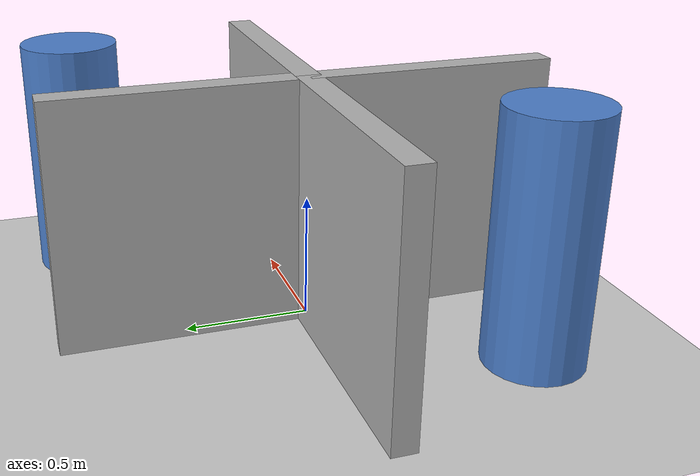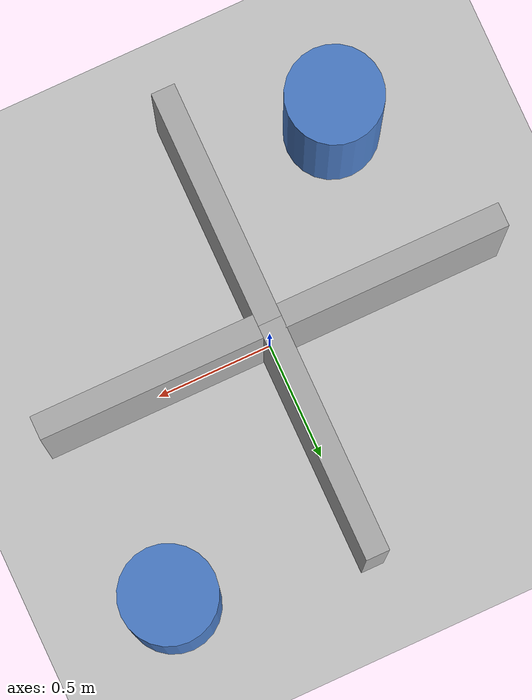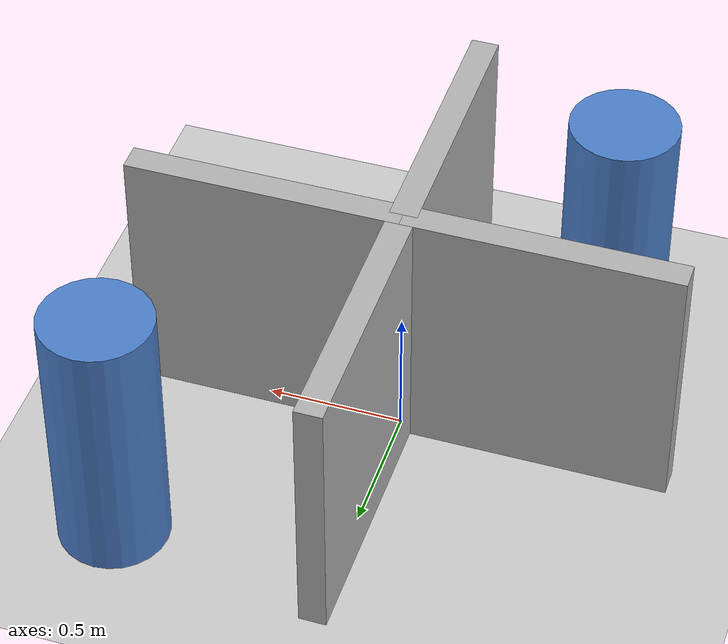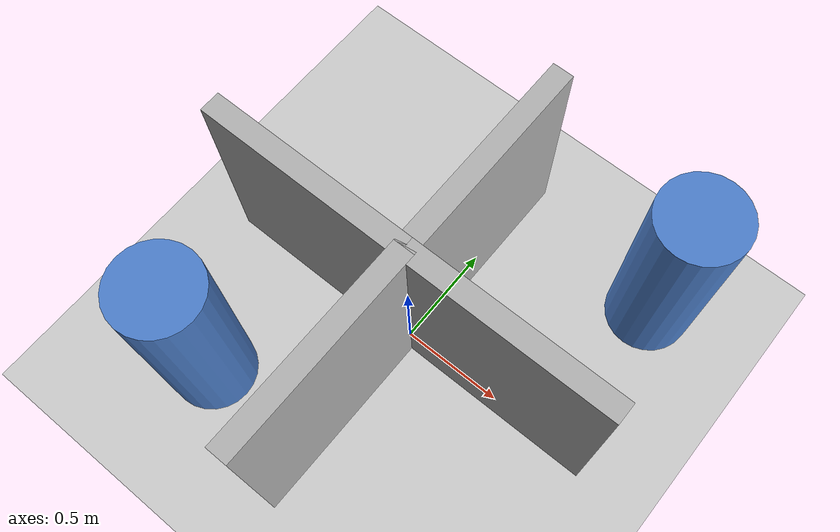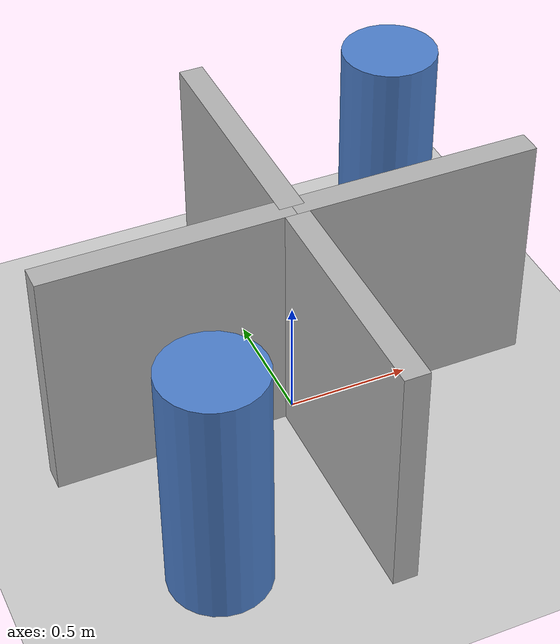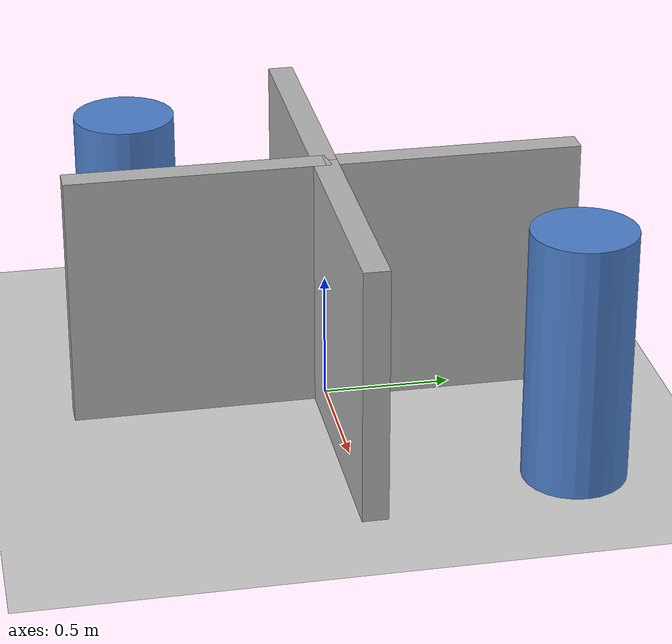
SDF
<?xml version="1.0" ?>
<sdf version='1.9'>
  <world name='test_room'>
    <plugin filename="gz-sim-sensors-system"
      name="gz::sim::systems::Sensors">
      <render_engine>ogre2</render_engine>
    </plugin>

    <plugin filename="gz-sim-physics-system"
            name="gz::sim::systems::Physics">
    </plugin>
    <plugin filename="gz-sim-user-commands-system"
            name="gz::sim::systems::UserCommands">
    </plugin>
    <plugin filename="gz-sim-scene-broadcaster-system"
            name="gz::sim::systems::SceneBroadcaster">
    </plugin>
    <plugin filename="gz-sim-imu-system"
            name="gz::sim::systems::Imu">
    </plugin>

    <!-- Sun light -->
    <light name='sun' type='directional'>
      <cast_shadows>true</cast_shadows>
      <pose>0 0 10 0 0 0</pose>
      <diffuse>0.9 0.9 0.9 1</diffuse>
      <specular>0.2 0.2 0.2 1</specular>
      <direction>-0.5 0.5 -1</direction>
    </light>

    <!-- Ambient ceiling light -->
    <light name='ceiling_light' type='point'>
      <pose>0 0 3 0 0 0</pose>
      <diffuse>0.6 0.6 0.6 1</diffuse>
      <specular>0.1 0.1 0.1 1</specular>
      <attenuation>
        <range>8</range>
        <constant>0.5</constant>
        <linear>0.01</linear>
        <quadratic>0.001</quadratic>
      </attenuation>
    </light>

    <!-- Ground plane -->
    <include>
      <uri>https://fuel.gazebosim.org/1.0/OpenRobotics/models/Ground Plane</uri>
      <name>ground_plane</name>
      <pose>0 0 0 0 0 0</pose>
    </include>

    <!-- Four walls to create a 4m x 4m room -->
    <!-- Wall 1: Front (positive X) -->
<!-- Wall 1: Front (positive X) -->
    <model name='wall_front'>
      <static>true</static>
      <pose>0.5 0 0.5 0 0 0</pose>
      <link name='link'>
        <collision name='collision'>
          <geometry>
            <box>
              <size>1.0 0.1 1.0</size>
            </box>
          </geometry>
        </collision>
        <visual name='visual'>
          <geometry>
            <box>
              <size>1.0 0.1 1.0</size>
            </box>
          </geometry>
          <material>
            <ambient>0.7 0.7 0.7 1</ambient>
            <diffuse>0.7 0.7 0.7 1</diffuse>
          </material>
        </visual>
      </link>
    </model>

    <!-- Wall 2: Back (negative X) -->
    <model name='wall_back'>
      <static>true</static>
      <pose>-0.5 0 0.5 0 0 0</pose>
      <link name='link'>
        <collision name='collision'>
          <geometry>
            <box>
              <size>1.0 0.1 1.0</size>
            </box>
          </geometry>
        </collision>
        <visual name='visual'>
          <geometry>
            <box>
              <size>1.0 0.1 1.0</size>
            </box>
          </geometry>
          <material>
            <ambient>0.7 0.7 0.7 1</ambient>
            <diffuse>0.7 0.7 0.7 1</diffuse>
          </material>
        </visual>
      </link>
    </model>

    <!-- Wall 3: Left (positive Y) -->
    <model name='wall_left'>
      <static>true</static>
      <pose>0 0.5 0.5 0 0 1.5708</pose>
      <link name='link'>
        <collision name='collision'>
          <geometry>
            <box>
              <size>1.0 0.1 1.0</size>
            </box>
          </geometry>
        </collision>
        <visual name='visual'>
          <geometry>
            <box>
              <size>1.0 0.1 1.0</size>
            </box>
          </geometry>
          <material>
            <ambient>0.7 0.7 0.7 1</ambient>
            <diffuse>0.7 0.7 0.7 1</diffuse>
          </material>
        </visual>
      </link>
    </model>

    <!-- Wall 4: Right (negative Y) -->
    <model name='wall_right'>
      <static>true</static>
      <pose>0 -0.5 0.5 0 0 1.5708</pose>
      <link name='link'>
        <collision name='collision'>
          <geometry>
            <box>
              <size>1.0 0.1 1.0</size>
            </box>
          </geometry>
        </collision>
        <visual name='visual'>
          <geometry>
            <box>
              <size>1.0 0.1 1.0</size>
            </box>
          </geometry>
          <material>
            <ambient>0.7 0.7 0.7 1</ambient>
            <diffuse>0.7 0.7 0.7 1</diffuse>
          </material>
        </visual>
      </link>
    </model>

    <!-- Optional: Add a simple pillar/obstacle for navigation testing -->
    <model name='pillar'>
      <static>true</static>
      <pose>0.8 0.8 0.5 0 0 0</pose>
      <link name='link'>
        <collision name='collision'>
          <geometry>
            <cylinder>
              <radius>0.2</radius>
              <length>1.0</length>
            </cylinder>
          </geometry>
        </collision>
        <visual name='visual'>
          <geometry>
            <cylinder>
              <radius>0.2</radius>
              <length>1.0</length>
            </cylinder>
          </geometry>
          <material>
            <ambient>0.3 0.5 0.8 1</ambient>
            <diffuse>0.3 0.5 0.8 1</diffuse>
          </material>
        </visual>
      </link>
    </model>

    <!-- Optional: Second pillar -->
    <model name='pillar2'>
      <static>true</static>
      <pose>-0.6 -0.7 0.5 0 0 0</pose>
      <link name='link'>
        <collision name='collision'>
          <geometry>
            <cylinder>
              <radius>0.2</radius>
              <length>1.0</length>
            </cylinder>
          </geometry>
        </collision>
        <visual name='visual'>
          <geometry>
            <cylinder>
              <radius>0.2</radius>
              <length>1.0</length>
            </cylinder>
          </geometry>
          <material>
            <ambient>0.3 0.5 0.8 1</ambient>
            <diffuse>0.3 0.5 0.8 1</diffuse>
          </material>
        </visual>
      </link>
    </model>

    <!-- Physics configuration -->
    <physics name='default_physics' type='ode'>
      <max_step_size>0.001</max_step_size>
      <real_time_factor>1.0</real_time_factor>
      <real_time_update_rate>1000</real_time_update_rate>
      <solver>
        <type>quick</type>
        <iters>50</iters>
        <sor>1.3</sor>
      </solver>
    </physics>

    <!-- Scene configuration -->
    <scene>
      <ambient>0.4 0.4 0.4 1</ambient>
      <background>0.5 0.6 0.7 1</background>
      <shadows>true</shadows>
      <grid>true</grid>
      <grid_vertical_cell_count>0</grid_vertical_cell_count>
    </scene>

    <spherical_coordinates>
      <surface_model>EARTH_WGS84</surface_model>
      <latitude_deg>0</latitude_deg>
      <longitude_deg>0</longitude_deg>
      <elevation>0</elevation>
      <heading_deg>0</heading_deg>
    </spherical_coordinates>
  </world>
</sdf>
